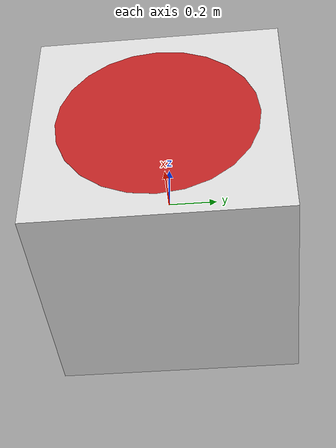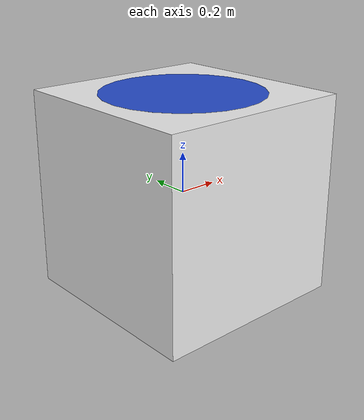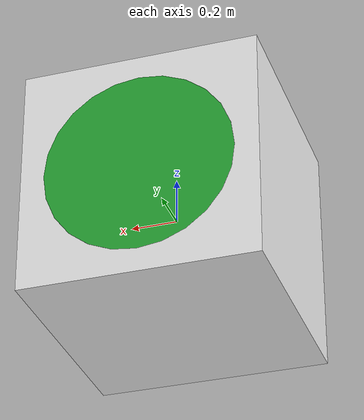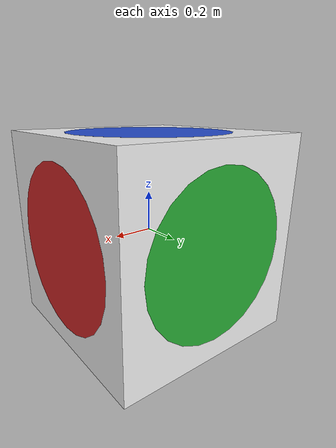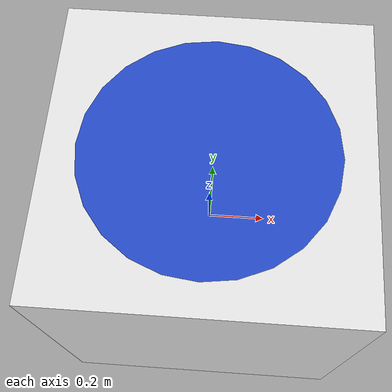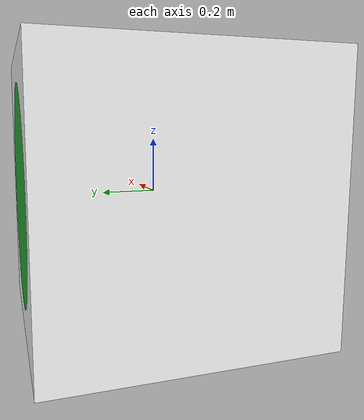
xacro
<?xml version="1.0"?>
<!-- Revolute-Revolute Manipulator -->
<robot name="cubli" xmlns:xacro="http://www.ros.org/wiki/xacro">

  <!-- Constants for robot dimensions -->
  <xacro:property name="PI" value="3.1415926535897931"/>
  <xacro:property name="pi" value="3.1415926535897931"/>
  <xacro:property name="cube_mass" value="1" />
  <xacro:property name="wheel_mass" value="1" />

  <xacro:property name="cube_length" value="1.0" />
  <xacro:property name="wheel_length" value="0.05" />
  <xacro:property name="wheel_radius" value="0.4" />
  <xacro:property name="offset" value="0.0001" />

  <!-- Import all Gazebo-customization elements, including Gazebo colors -->
  <xacro:include filename="$(find cubli_description)/urdf/cubli.gazebo" />
  <!-- Import Rviz colors -->
  <xacro:include filename="$(find cubli_description)/urdf/materials.xacro" />

  <!--&lt;!&ndash; Used for fixing robot to Gazebo 'base_link' &ndash;&gt;-->

  <link name="cube">
    <inertial>
      <origin xyz="0 0 0" rpy="0 0 0"/>
      <mass value="${cube_mass}" />
      <inertia  ixx="${1/6*cube_mass*cube_length*cube_length}" ixy="0.0"  ixz="0.0"  iyy="${1/6*cube_mass*cube_length*cube_length}"  iyz="0.0"  izz="${1/6*cube_mass*cube_length*cube_length}" />
    </inertial>
    <visual>
      <origin xyz="0 0 0" rpy="0 0 0"/>
      <geometry>
        <box size="${cube_length} ${cube_length} ${cube_length}" />
      </geometry>
    </visual>
    <collision>
      <origin xyz="0 0 0" rpy="0 0 0"/>
      <geometry>
        <box size="${cube_length} ${cube_length} ${cube_length}" />
      </geometry>
    </collision>
  </link>

  <link name="wheel_x">
    <inertial>
      <origin xyz="0 0 0" rpy="0 0 0"/>
      <mass value="1.0" />
      <inertia ixx="${1/12*wheel_mass*(3*wheel_radius*wheel_radius+wheel_length*wheel_length)}" ixy="0.0" ixz="0.0" iyy="${1/12*wheel_mass*(3*wheel_radius*wheel_radius+wheel_length*wheel_length)}" iyz="0.0" izz="${1/2*wheel_mass*wheel_radius*wheel_radius}"/>
    </inertial>
    <visual>
      <origin xyz="0 0 0" rpy="0 0 0"/>
      <geometry>
        <cylinder length="${wheel_length}" radius="${wheel_radius}"/>
      </geometry>
    </visual>
    <collision>
      <origin xyz="0 0 0" rpy="0 0 0"/>
      <geometry>
        <cylinder length="${wheel_length}" radius="${wheel_radius}"/>
      </geometry>
    </collision>
  </link>

  <link name="wheel_y">
    <inertial>
      <origin xyz="0 0 0" rpy="0 0 0"/>
      <mass value="1.0" />
      <inertia ixx="${1/12*wheel_mass*(3*wheel_radius*wheel_radius+wheel_length*wheel_length)}" ixy="0.0" ixz="0.0" iyy="${1/12*wheel_mass*(3*wheel_radius*wheel_radius+wheel_length*wheel_length)}" iyz="0.0" izz="${1/2*wheel_mass*wheel_radius*wheel_radius}"/>
    </inertial>
    <visual>
      <origin xyz="0 0 0" rpy="0 0 0"/>
      <geometry>
        <cylinder length="${wheel_length}" radius="${wheel_radius}"/>
      </geometry>
    </visual>
    <collision>
      <origin xyz="0 0 0" rpy="0 0 0"/>
      <geometry>
        <cylinder length="${wheel_length}" radius="${wheel_radius}"/>
      </geometry>
    </collision>
  </link>

  <link name="wheel_z">
    <inertial>
      <origin xyz="0 0 0" rpy="0 0 0"/>
      <mass value="1.0" />
      <inertia ixx="${1/12*wheel_mass*(3*wheel_radius*wheel_radius+wheel_length*wheel_length)}" ixy="0.0" ixz="0.0" iyy="${1/12*wheel_mass*(3*wheel_radius*wheel_radius+wheel_length*wheel_length)}" iyz="0.0" izz="${1/2*wheel_mass*wheel_radius*wheel_radius}"/>
    </inertial>
    <visual>
      <origin xyz="0 0 0" rpy="0 0 0"/>
      <geometry>
        <cylinder length="${wheel_length}" radius="${wheel_radius}"/>
      </geometry>
    </visual>
    <collision>
      <origin xyz="0 0 0" rpy="0 0 0"/>
      <geometry>
        <cylinder length="${wheel_length}" radius="${wheel_radius}"/>
      </geometry>
    </collision>
  </link>

  <joint name="joint_x" type="continuous">
    <parent link="cube"/>
    <child link="wheel_x"/>
    <origin xyz="${cube_length/2-wheel_length/2+offset} 0 0" rpy="0 ${pi/2} 0"/>
    <axis xyz="0 0 1"/>
    <dynamics damping="0.7"/>
  </joint>

  <joint name="joint_y" type="continuous">
    <parent link="cube"/>
    <child link="wheel_y"/>
    <origin xyz="0 ${cube_length/2-wheel_length/2+offset} 0" rpy="-${pi/2} 0 0"/>
    <axis xyz="0 0 1"/>
    <dynamics damping="0.7"/>
  </joint>

  <joint name="joint_z" type="continuous">
    <parent link="cube"/>
    <child link="wheel_z"/>
    <origin xyz="0 0 ${cube_length/2-wheel_length/2+offset}" rpy="0 0 0"/>
    <axis xyz="0 0 1"/>
    <dynamics damping="0.7"/>
  </joint>

  <transmission name="tran1">
    <type>transmission_interface/SimpleTransmission</type>
    <joint name="joint_x">
      <hardwareInterface>hardware_interface/EffortJointInterface</hardwareInterface>
    </joint>
    <actuator name="motor1">
      <hardwareInterface>hardware_interface/EffortJointInterface</hardwareInterface>
      <mechanicalReduction>1</mechanicalReduction>
    </actuator>
  </transmission>

  <transmission name="tran2">
    <type>transmission_interface/SimpleTransmission</type>
    <joint name="joint_y">
      <hardwareInterface>hardware_interface/EffortJointInterface</hardwareInterface>
    </joint>
    <actuator name="motor2">
      <hardwareInterface>hardware_interface/EffortJointInterface</hardwareInterface>
      <mechanicalReduction>1</mechanicalReduction>
    </actuator>
  </transmission>

  <transmission name="tran3">
    <type>transmission_interface/SimpleTransmission</type>
    <joint name="joint_z">
      <hardwareInterface>hardware_interface/EffortJointInterface</hardwareInterface>
    </joint>
    <actuator name="motor3">
      <hardwareInterface>hardware_interface/EffortJointInterface</hardwareInterface>
      <mechanicalReduction>1</mechanicalReduction>
    </actuator>
  </transmission>

</robot>
